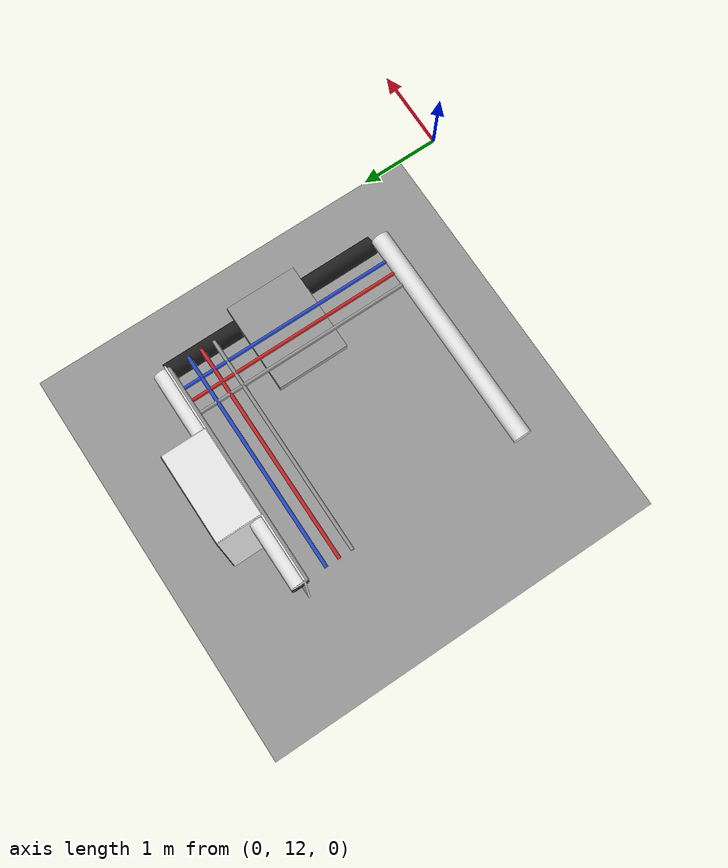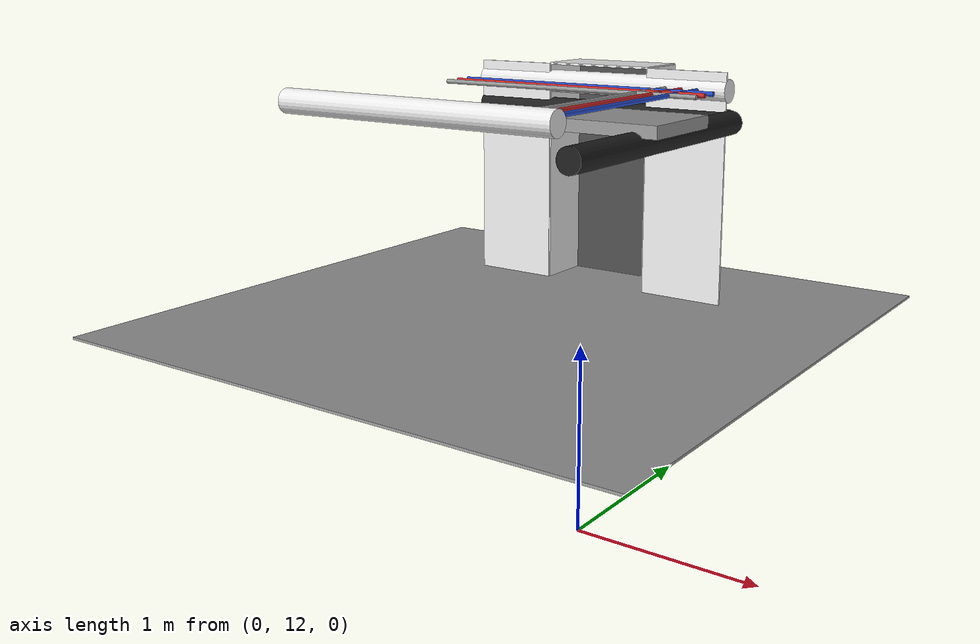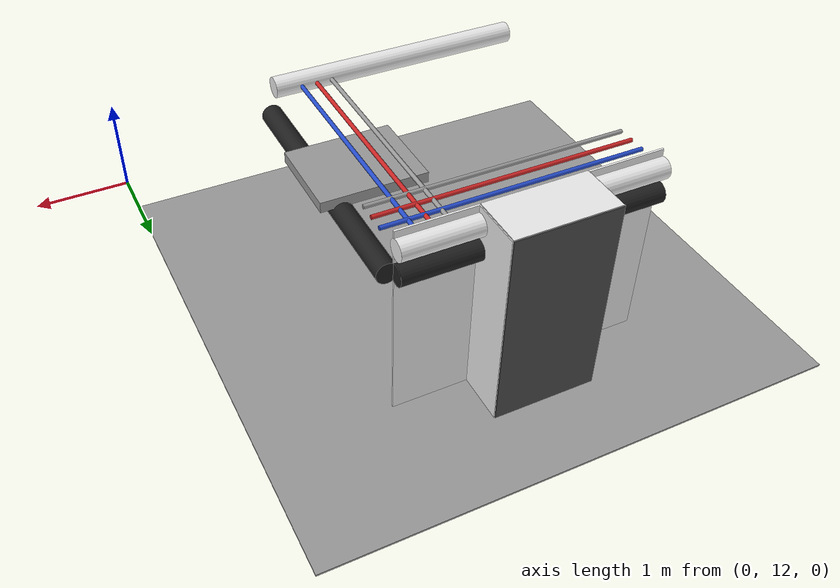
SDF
<sdf version="1.6">
 <world name="default">
  <model name="ceiling_1_-1_6_1_2">
   <pose>-1.5 15.0 1.7 0.0 0.0 1.57</pose>
   <link name="link_1">
    <visual name="visual">
     <geometry><box><size>0.8 1 0.1</size></box></geometry>
     <material>
      <script><uri>file://media/materials/scripts/gazebo.material</uri><name>Gazebo/Grey</name></script>
     </material>
    </visual>
    <collision name="collision"><geometry><box><size>0.8 1 0.1</size></box></geometry></collision>
   </link>
   <static>1</static>
  </model>
  <model name="black_pipe_right_-1_6_0_2">
   <static>1</static>
   <pose>-2.5 15.0 1.84 0.0 0.0 0.0</pose>
   <link name="link_0">
    <visual name="visual">
     <pose>1.3 0 -0.25 1.57 0 0</pose>
     <geometry><cylinder><radius>0.1</radius><length>2.5</length></cylinder></geometry>
     <material>
      <script><uri>file://media/materials/scripts/gazebo.material</uri><name>Gazebo/Black</name></script>
     </material>
    </visual>
    <collision name="collision">
     <pose>1.3 0 -0.25 1.57 0 0</pose>
     <geometry><cylinder><radius>0.1</radius><length>2.5</length></cylinder></geometry>
    </collision>
   </link>
  </model>
  <model name="grey_pipe_right_-1_6_0_2">
   <static>1</static>
   <pose>-2.5 15.0 1.84 0.0 0.0 0.0</pose>
   <link name="link_0">
    <visual name="visual">
     <pose>0.7 0 0 1.57 0 0</pose>
     <geometry><cylinder><radius>0.02</radius><length>2.5</length></cylinder></geometry>
     <material>
      <script><uri>file://media/materials/scripts/gazebo.material</uri><name>Gazebo/Grey</name></script>
     </material>
    </visual>
    <collision name="collision">
     <pose>0.7 0 0 1.57 0 0</pose>
     <geometry><cylinder><radius>0.02</radius><length>2.5</length></cylinder></geometry>
    </collision>
   </link>
  </model>
  <model name="red_pipe_right_-1_6_0_2">
   <static>1</static>
   <pose>-2.5 15.0 1.84 0.0 0.0 0.0</pose>
   <link name="link_0">
    <visual name="visual">
     <pose>0.85 0 0 1.57 0 0</pose>
     <geometry><cylinder><radius>0.02</radius><length>2.5</length></cylinder></geometry>
     <material>
      <script><uri>file://media/materials/scripts/gazebo.material</uri><name>Gazebo/Red</name></script>
     </material>
    </visual>
    <collision name="collision">
     <pose>0.85 0 0 1.57 0 0</pose>
     <geometry><cylinder><radius>0.02</radius><length>2.5</length></cylinder></geometry>
    </collision>
   </link>
  </model>
  <model name="blue_pipe_right_-1_6_0_2">
   <static>1</static>
   <pose>-2.5 15.0 1.84 0.0 0.0 0.0</pose>
   <link name="link_0">
    <visual name="visual">
     <pose>1 0 0 1.57 0 0</pose>
     <geometry><cylinder><radius>0.02</radius><length>2.5</length></cylinder></geometry>
     <material>
      <script><uri>file://media/materials/scripts/gazebo.material</uri><name>Gazebo/Blue</name></script>
     </material>
    </visual>
    <collision name="collision">
     <pose>1 0 0 1.57 0 0</pose>
     <geometry><cylinder><radius>0.02</radius><length>2.5</length></cylinder></geometry>
    </collision>
   </link>
  </model>
  <model name="white_pipe_left_1_-1_6_0_2">
   <static>1</static>
   <pose>-2.5 15.0 1.84 0.0 0.0 1.57</pose>
   <link name="link_0">
    <visual name="visual">
     <pose>-1.3 0 0 1.57 0 0</pose>
     <geometry><cylinder><radius>0.1</radius><length>2.5</length></cylinder></geometry>
     <material>
      <script><uri>file://media/materials/scripts/gazebo.material</uri><name>Gazebo/White</name></script>
     </material>
    </visual>
    <collision name="collision">
     <pose>-1.3 0 0 1.57 0 0</pose>
     <geometry><cylinder><radius>0.1</radius><length>2.5</length></cylinder></geometry>
    </collision>
   </link>
  </model>
  <model name="white_pipe_right_1_-1_6_0_2">
   <static>1</static>
   <pose>-2.5 15.0 1.84 0.0 0.0 1.57</pose>
   <link name="link_0">
    <visual name="visual">
     <pose>1.3 0 0 1.57 0 0</pose>
     <geometry><cylinder><radius>0.1</radius><length>2.5</length></cylinder></geometry>
     <material>
      <script><uri>file://media/materials/scripts/gazebo.material</uri><name>Gazebo/White</name></script>
     </material>
    </visual>
    <collision name="collision">
     <pose>1.3 0 0 1.57 0 0</pose>
     <geometry><cylinder><radius>0.1</radius><length>2.5</length></cylinder></geometry>
    </collision>
   </link>
  </model>
  <model name="black_pipe_right_1_-1_6_0_2">
   <static>1</static>
   <pose>-2.5 15.0 1.84 0.0 0.0 1.57</pose>
   <link name="link_0">
    <visual name="visual">
     <pose>1.3 0 -0.25 1.57 0 0</pose>
     <geometry><cylinder><radius>0.1</radius><length>2.5</length></cylinder></geometry>
     <material>
      <script><uri>file://media/materials/scripts/gazebo.material</uri><name>Gazebo/Black</name></script>
     </material>
    </visual>
    <collision name="collision">
     <pose>1.3 0 -0.25 1.57 0 0</pose>
     <geometry><cylinder><radius>0.1</radius><length>2.5</length></cylinder></geometry>
    </collision>
   </link>
  </model>
  <model name="grey_pipe_right_1_-1_6_0_2">
   <static>1</static>
   <pose>-2.5 15.0 1.84 0.0 0.0 1.57</pose>
   <link name="link_0">
    <visual name="visual">
     <pose>0.7 0 0 1.57 0 0</pose>
     <geometry><cylinder><radius>0.02</radius><length>2.5</length></cylinder></geometry>
     <material>
      <script><uri>file://media/materials/scripts/gazebo.material</uri><name>Gazebo/Grey</name></script>
     </material>
    </visual>
    <collision name="collision">
     <pose>0.7 0 0 1.57 0 0</pose>
     <geometry><cylinder><radius>0.02</radius><length>2.5</length></cylinder></geometry>
    </collision>
   </link>
  </model>
  <model name="red_pipe_right_1_-1_6_0_2">
   <static>1</static>
   <pose>-2.5 15.0 1.84 0.0 0.0 1.57</pose>
   <link name="link_0">
    <visual name="visual">
     <pose>0.85 0 0 1.57 0 0</pose>
     <geometry><cylinder><radius>0.02</radius><length>2.5</length></cylinder></geometry>
     <material>
      <script><uri>file://media/materials/scripts/gazebo.material</uri><name>Gazebo/Red</name></script>
     </material>
    </visual>
    <collision name="collision">
     <pose>0.85 0 0 1.57 0 0</pose>
     <geometry><cylinder><radius>0.02</radius><length>2.5</length></cylinder></geometry>
    </collision>
   </link>
  </model>
  <model name="blue_pipe_right_1_-1_6_0_2">
   <static>1</static>
   <pose>-2.5 15.0 1.84 0.0 0.0 1.57</pose>
   <link name="link_0">
    <visual name="visual">
     <pose>1 0 0 1.57 0 0</pose>
     <geometry><cylinder><radius>0.02</radius><length>2.5</length></cylinder></geometry>
     <material>
      <script><uri>file://media/materials/scripts/gazebo.material</uri><name>Gazebo/Blue</name></script>
     </material>
    </visual>
    <collision name="collision">
     <pose>1 0 0 1.57 0 0</pose>
     <geometry><cylinder><radius>0.02</radius><length>2.5</length></cylinder></geometry>
    </collision>
   </link>
  </model>
  <model name="wall_bottom_-1_6_0_2">
   <static>1</static>
   <pose>-2.5 15.0 0.0 0.0 0.0 0.0</pose>
   <link name="link">
    <collision name="collision"><geometry><box><size>5.0 5.0 0.02</size></box></geometry></collision>
    <visual name="visual">
     <material>
      <script><name>Gazebo/Grey</name><uri>file://media/materials/scripts/gazebo.material</uri></script>
     </material>
     <geometry><box><size>5.0 5.0 0.02</size></box></geometry>
    </visual>
   </link>
  </model>
  <model name="wall_front_front_left_-1_6_0_2">
   <static>1</static>
   <pose>-1.625 16.25 1.0 0.0 0.0 0.0</pose>
   <link name="link">
    <collision name="collision"><geometry><box><size>0.75 0.02 2.0</size></box></geometry></collision>
    <visual name="visual">
     <material>
      <script><name>Gazebo/White</name><uri>file://media/materials/scripts/gazebo.material</uri></script>
     </material>
     <geometry><box><size>0.75 0.02 2.0</size></box></geometry>
    </visual>
   </link>
  </model>
  <model name="wall_front_front_right_-1_6_0_2">
   <static>1</static>
   <pose>-3.375 16.25 1.0 0.0 0.0 0.0</pose>
   <link name="link">
    <collision name="collision"><geometry><box><size>0.75 0.02 2.0</size></box></geometry></collision>
    <visual name="visual">
     <material>
      <script><name>Gazebo/White</name><uri>file://media/materials/scripts/gazebo.material</uri></script>
     </material>
     <geometry><box><size>0.75 0.02 2.0</size></box></geometry>
    </visual>
   </link>
  </model>
  <model name="wall_front_front_up_-1_6_0_2">
   <static>1</static>
   <pose>-2.5 16.25 2.0 0.0 0.0 0.0</pose>
   <link name="link">
    <collision name="collision"><geometry><box><size>1.0 0.02 0.001</size></box></geometry></collision>
    <visual name="visual">
     <material>
      <script><name>Gazebo/White</name><uri>file://media/materials/scripts/gazebo.material</uri></script>
     </material>
     <geometry><box><size>1.0 0.02 0.001</size></box></geometry>
    </visual>
   </link>
  </model>
  <model name="wall_front_inside_back_-1_6_0_2">
   <static>1</static>
   <pose>-2.5 16.75 1.0 0.0 0.0 0.0</pose>
   <link name="link">
    <collision name="collision"><geometry><box><size>1 0.02 2</size></box></geometry></collision>
    <visual name="visual">
     <material>
      <script><name>Gazebo/DarkGrey</name><uri>file://media/materials/scripts/gazebo.material</uri></script>
     </material>
     <geometry><box><size>1 0.02 2</size></box></geometry>
    </visual>
   </link>
  </model>
  <model name="wall_front_inside_left_-1_6_0_2">
   <static>1</static>
   <pose>-3.0 16.5 1.0 0.0 0.0 1.57</pose>
   <link name="link">
    <collision name="collision"><geometry><box><size>0.5 0.02 2</size></box></geometry></collision>
    <visual name="visual">
     <material>
      <script><name>Gazebo/White</name><uri>file://media/materials/scripts/gazebo.material</uri></script>
     </material>
     <geometry><box><size>0.5 0.02 2</size></box></geometry>
    </visual>
   </link>
  </model>
  <model name="wall_front_inside_right_-1_6_0_2">
   <static>1</static>
   <pose>-2.0 16.5 1.0 0.0 0.0 1.57</pose>
   <link name="link">
    <collision name="collision"><geometry><box><size>0.5 0.02 2</size></box></geometry></collision>
    <visual name="visual">
     <material>
      <script><name>Gazebo/White</name><uri>file://media/materials/scripts/gazebo.material</uri></script>
     </material>
     <geometry><box><size>0.5 0.02 2</size></box></geometry>
    </visual>
   </link>
  </model>
  <model name="wall_front_inside_top_-1_6_0_2">
   <static>1</static>
   <pose>-2.5 16.5 2.0 1.57 0.0 0.0</pose>
   <link name="link">
    <collision name="collision"><geometry><box><size>1 0.02 0.5</size></box></geometry></collision>
    <visual name="visual">
     <material>
      <script><name>Gazebo/White</name><uri>file://media/materials/scripts/gazebo.material</uri></script>
     </material>
     <geometry><box><size>1 0.02 0.5</size></box></geometry>
    </visual>
   </link>
  </model>
 </world>
</sdf>
